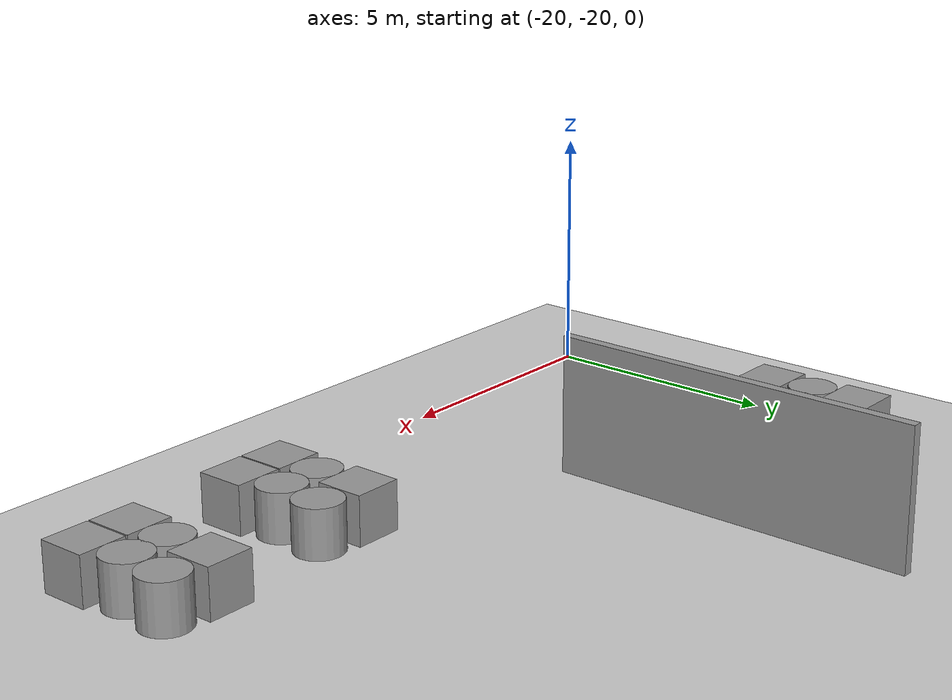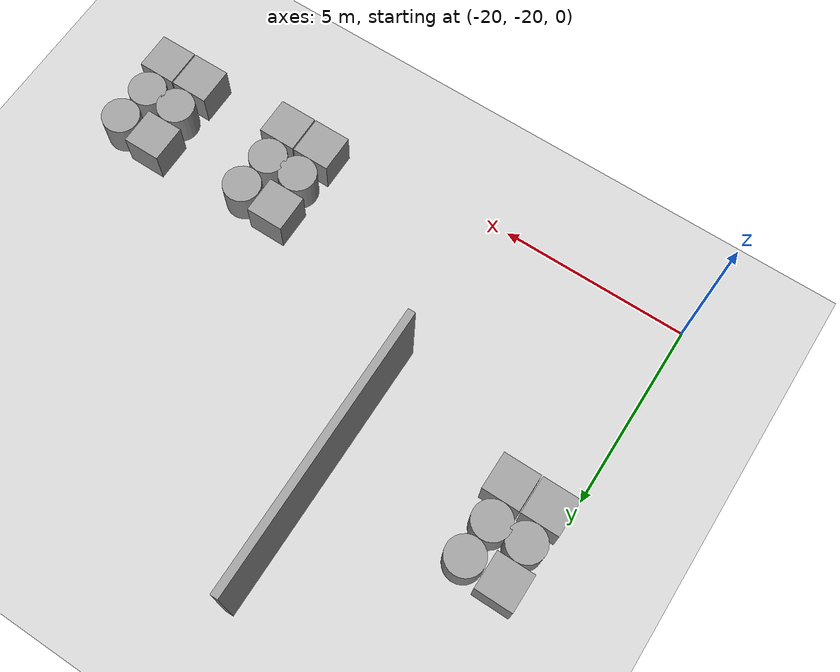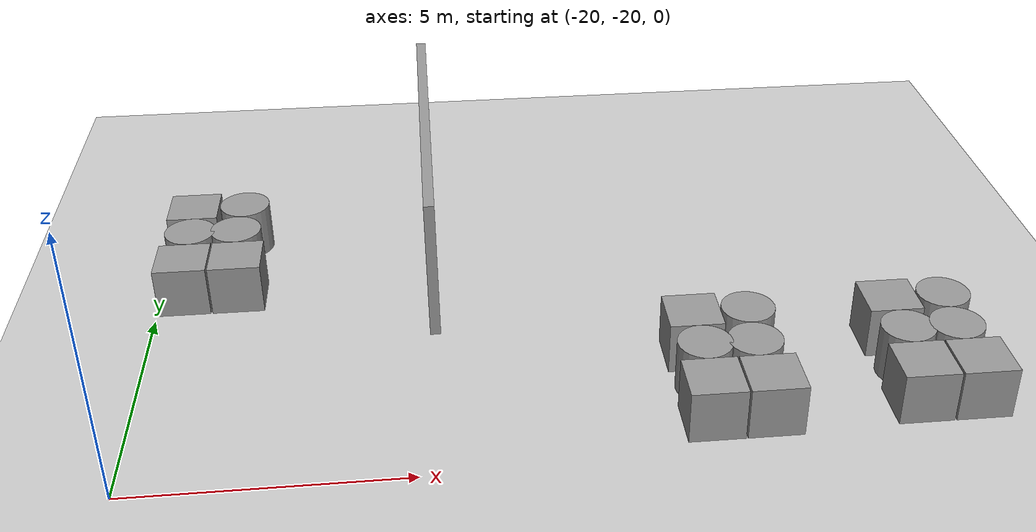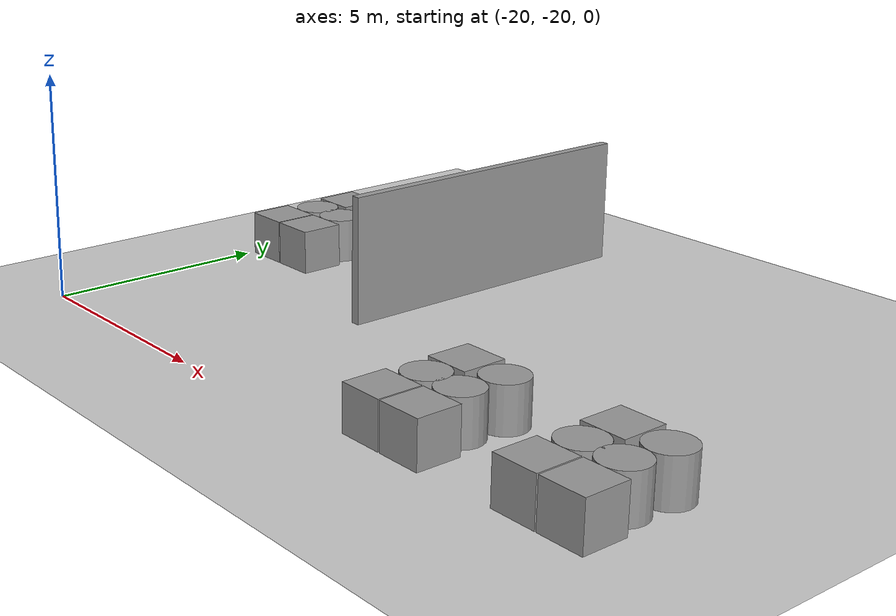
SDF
<sdf version="1.6">
 <world name="default">
  <model name="ground_plane">
   <static>1</static>
   <link name="link">
    <collision name="collision">
     <geometry><plane><normal>0 0 1</normal><size>100 100</size></plane></geometry>
     <surface><friction><ode><mu>100</mu><mu2>50</mu2></ode></friction></surface>
    </collision>
    <visual name="visual">
     <cast_shadows>0</cast_shadows>
     <geometry><plane><normal>0 0 1</normal><size>100 100</size></plane></geometry>
     <material>
      <script><uri>file://media/materials/scripts/gazebo.material</uri><name>Gazebo/Grey</name></script>
     </material>
    </visual>
   </link>
  </model>
  <model name="grey_wall_5_clone_0">
   <static>1</static>
   <link name="link">
    <pose>0 0 1.4 0 -0 0</pose>
    <collision name="collision"><geometry><box><size>7.5 0.2 2.8</size></box></geometry></collision>
    <visual name="visual">
     <cast_shadows>0</cast_shadows>
     <geometry><box><size>7.5 0.2 2.8</size></box></geometry>
     <material>
      <script>
       <uri>model://grey_wall/materials/scripts</uri>
       <uri>model://grey_wall/materials/textures</uri>
       <name>vrc/grey_wall</name>
      </script>
     </material>
    </visual>
   </link>
   <pose>-14.6343 -12.2013 0 0 -0 1.5708</pose>
  </model>
  <model name="machine3_0">
   <link name="link_13">
    <pose>-0.503159 1 0 0 -0 0</pose>
    <inertial>
     <mass>1</mass>
     <inertia>
      <ixx>0.166667</ixx>
      <ixy>0</ixy>
      <ixz>0</ixz>
      <iyy>0.166667</iyy>
      <iyz>0</iyz>
      <izz>0.166667</izz>
     </inertia>
    </inertial>
    <visual name="visual">
     <geometry><box><size>1 1 1</size></box></geometry>
     <material>
      <lighting>1</lighting>
      <script><uri>file://media/materials/scripts/gazebo.material</uri><name>Gazebo/Grey</name></script>
      <ambient>0.3 0.3 0.3 1</ambient>
      <diffuse>0.7 0.7 0.7 1</diffuse>
      <specular>0.01 0.01 0.01 1</specular>
      <emissive>0 0 0 1</emissive>
     </material>
    </visual>
    <collision name="collision">
     <geometry><box><size>1 1 1</size></box></geometry>
     <surface>
      <friction>
       <ode><mu>1</mu><mu2>1</mu2><fdir1>0 0 0</fdir1><slip1>0</slip1><slip2>0</slip2></ode>
       <torsional>
        <coefficient>1</coefficient>
        <patch_radius>0</patch_radius>
        <surface_radius>0</surface_radius>
        <use_patch_radius>1</use_patch_radius>
        <ode><slip>0</slip></ode>
       </torsional>
      </friction>
      <bounce><restitution_coefficient>0</restitution_coefficient><threshold>1e+06</threshold></bounce>
      <contact>
       <collide_without_contact>0</collide_without_contact>
       <collide_without_contact_bitmask>1</collide_without_contact_bitmask>
       <collide_bitmask>1</collide_bitmask>
       <ode>
        <soft_cfm>0</soft_cfm>
        <soft_erp>0.2</soft_erp>
        <kp>1e+13</kp>
        <kd>1</kd>
        <max_vel>0.01</max_vel>
        <min_depth>0</min_depth>
       </ode>
       <bullet>
        <split_impulse>1</split_impulse>
        <split_impulse_penetration_threshold>-0.01</split_impulse_penetration_threshold>
        <soft_cfm>0</soft_cfm>
        <soft_erp>0.2</soft_erp>
        <kp>1e+13</kp>
        <kd>1</kd>
       </bullet>
      </contact>
     </surface>
    </collision>
   </link>
   <link name="link_14">
    <pose>0.524915 1 0 0 -0 0</pose>
    <inertial>
     <mass>1</mass>
     <inertia><ixx>0.145833</ixx><ixy>0</ixy><ixz>0</ixz><iyy>0.145833</iyy><iyz>0</iyz><izz>0.125</izz></inertia>
    </inertial>
    <visual name="visual">
     <geometry><cylinder><radius>0.5</radius><length>1</length></cylinder></geometry>
     <material>
      <lighting>1</lighting>
      <script><uri>file://media/materials/scripts/gazebo.material</uri><name>Gazebo/Grey</name></script>
      <ambient>0.3 0.3 0.3 1</ambient>
      <diffuse>0.7 0.7 0.7 1</diffuse>
      <specular>0.01 0.01 0.01 1</specular>
      <emissive>0 0 0 1</emissive>
     </material>
    </visual>
    <collision name="collision">
     <geometry><cylinder><radius>0.5</radius><length>1</length></cylinder></geometry>
     <surface>
      <friction>
       <ode><mu>1</mu><mu2>1</mu2><fdir1>0 0 0</fdir1><slip1>0</slip1><slip2>0</slip2></ode>
       <torsional>
        <coefficient>1</coefficient>
        <patch_radius>0</patch_radius>
        <surface_radius>0</surface_radius>
        <use_patch_radius>1</use_patch_radius>
        <ode><slip>0</slip></ode>
       </torsional>
      </friction>
      <bounce><restitution_coefficient>0</restitution_coefficient><threshold>1e+06</threshold></bounce>
      <contact>
       <collide_without_contact>0</collide_without_contact>
       <collide_without_contact_bitmask>1</collide_without_contact_bitmask>
       <collide_bitmask>1</collide_bitmask>
       <ode>
        <soft_cfm>0</soft_cfm>
        <soft_erp>0.2</soft_erp>
        <kp>1e+13</kp>
        <kd>1</kd>
        <max_vel>0.01</max_vel>
        <min_depth>0</min_depth>
       </ode>
       <bullet>
        <split_impulse>1</split_impulse>
        <split_impulse_penetration_threshold>-0.01</split_impulse_penetration_threshold>
        <soft_cfm>0</soft_cfm>
        <soft_erp>0.2</soft_erp>
        <kp>1e+13</kp>
        <kd>1</kd>
       </bullet>
      </contact>
     </surface>
    </collision>
   </link>
   <link name="link_15">
    <pose>0.434688 0 0 0 -0 0</pose>
    <inertial>
     <mass>1</mass>
     <inertia><ixx>0.145833</ixx><ixy>0</ixy><ixz>0</ixz><iyy>0.145833</iyy><iyz>0</iyz><izz>0.125</izz></inertia>
    </inertial>
    <visual name="visual">
     <geometry><cylinder><radius>0.5</radius><length>1</length></cylinder></geometry>
     <material>
      <lighting>1</lighting>
      <script><uri>file://media/materials/scripts/gazebo.material</uri><name>Gazebo/Grey</name></script>
      <ambient>0.3 0.3 0.3 1</ambient>
      <diffuse>0.7 0.7 0.7 1</diffuse>
      <specular>0.01 0.01 0.01 1</specular>
      <emissive>0 0 0 1</emissive>
     </material>
    </visual>
    <collision name="collision">
     <geometry><cylinder><radius>0.5</radius><length>1</length></cylinder></geometry>
     <surface>
      <friction>
       <ode><mu>1</mu><mu2>1</mu2><fdir1>0 0 0</fdir1><slip1>0</slip1><slip2>0</slip2></ode>
       <torsional>
        <coefficient>1</coefficient>
        <patch_radius>0</patch_radius>
        <surface_radius>0</surface_radius>
        <use_patch_radius>1</use_patch_radius>
        <ode><slip>0</slip></ode>
       </torsional>
      </friction>
      <bounce><restitution_coefficient>0</restitution_coefficient><threshold>1e+06</threshold></bounce>
      <contact>
       <collide_without_contact>0</collide_without_contact>
       <collide_without_contact_bitmask>1</collide_without_contact_bitmask>
       <collide_bitmask>1</collide_bitmask>
       <ode>
        <soft_cfm>0</soft_cfm>
        <soft_erp>0.2</soft_erp>
        <kp>1e+13</kp>
        <kd>1</kd>
        <max_vel>0.01</max_vel>
        <min_depth>0</min_depth>
       </ode>
       <bullet>
        <split_impulse>1</split_impulse>
        <split_impulse_penetration_threshold>-0.01</split_impulse_penetration_threshold>
        <soft_cfm>0</soft_cfm>
        <soft_erp>0.2</soft_erp>
        <kp>1e+13</kp>
        <kd>1</kd>
       </bullet>
      </contact>
     </surface>
    </collision>
   </link>
   <link name="link_16">
    <pose>-0.471074 0 0 0 -0 0</pose>
    <inertial>
     <mass>1</mass>
     <inertia><ixx>0.145833</ixx><ixy>0</ixy><ixz>0</ixz><iyy>0.145833</iyy><iyz>0</iyz><izz>0.125</izz></inertia>
    </inertial>
    <visual name="visual">
     <geometry><cylinder><radius>0.5</radius><length>1</length></cylinder></geometry>
     <material>
      <lighting>1</lighting>
      <script><uri>file://media/materials/scripts/gazebo.material</uri><name>Gazebo/Grey</name></script>
      <ambient>0.3 0.3 0.3 1</ambient>
      <diffuse>0.7 0.7 0.7 1</diffuse>
      <specular>0.01 0.01 0.01 1</specular>
      <emissive>0 0 0 1</emissive>
     </material>
    </visual>
    <collision name="collision">
     <geometry><cylinder><radius>0.5</radius><length>1</length></cylinder></geometry>
     <surface>
      <friction>
       <ode><mu>1</mu><mu2>1</mu2><fdir1>0 0 0</fdir1><slip1>0</slip1><slip2>0</slip2></ode>
       <torsional>
        <coefficient>1</coefficient>
        <patch_radius>0</patch_radius>
        <surface_radius>0</surface_radius>
        <use_patch_radius>1</use_patch_radius>
        <ode><slip>0</slip></ode>
       </torsional>
      </friction>
      <bounce><restitution_coefficient>0</restitution_coefficient><threshold>1e+06</threshold></bounce>
      <contact>
       <collide_without_contact>0</collide_without_contact>
       <collide_without_contact_bitmask>1</collide_without_contact_bitmask>
       <collide_bitmask>1</collide_bitmask>
       <ode>
        <soft_cfm>0</soft_cfm>
        <soft_erp>0.2</soft_erp>
        <kp>1e+13</kp>
        <kd>1</kd>
        <max_vel>0.01</max_vel>
        <min_depth>0</min_depth>
       </ode>
       <bullet>
        <split_impulse>1</split_impulse>
        <split_impulse_penetration_threshold>-0.01</split_impulse_penetration_threshold>
        <soft_cfm>0</soft_cfm>
        <soft_erp>0.2</soft_erp>
        <kp>1e+13</kp>
        <kd>1</kd>
       </bullet>
      </contact>
     </surface>
    </collision>
   </link>
   <link name="link_17">
    <pose>-0.50937 -1 0 0 -0 0</pose>
    <inertial>
     <mass>1</mass>
     <inertia>
      <ixx>0.166667</ixx>
      <ixy>0</ixy>
      <ixz>0</ixz>
      <iyy>0.166667</iyy>
      <iyz>0</iyz>
      <izz>0.166667</izz>
     </inertia>
    </inertial>
    <visual name="visual">
     <geometry><box><size>1 1 1</size></box></geometry>
     <material>
      <lighting>1</lighting>
      <script><uri>file://media/materials/scripts/gazebo.material</uri><name>Gazebo/Grey</name></script>
      <ambient>0.3 0.3 0.3 1</ambient>
      <diffuse>0.7 0.7 0.7 1</diffuse>
      <specular>0.01 0.01 0.01 1</specular>
      <emissive>0 0 0 1</emissive>
     </material>
    </visual>
    <collision name="collision">
     <geometry><box><size>1 1 1</size></box></geometry>
     <surface>
      <friction>
       <ode><mu>1</mu><mu2>1</mu2><fdir1>0 0 0</fdir1><slip1>0</slip1><slip2>0</slip2></ode>
       <torsional>
        <coefficient>1</coefficient>
        <patch_radius>0</patch_radius>
        <surface_radius>0</surface_radius>
        <use_patch_radius>1</use_patch_radius>
        <ode><slip>0</slip></ode>
       </torsional>
      </friction>
      <bounce><restitution_coefficient>0</restitution_coefficient><threshold>1e+06</threshold></bounce>
      <contact>
       <collide_without_contact>0</collide_without_contact>
       <collide_without_contact_bitmask>1</collide_without_contact_bitmask>
       <collide_bitmask>1</collide_bitmask>
       <ode>
        <soft_cfm>0</soft_cfm>
        <soft_erp>0.2</soft_erp>
        <kp>1e+13</kp>
        <kd>1</kd>
        <max_vel>0.01</max_vel>
        <min_depth>0</min_depth>
       </ode>
       <bullet>
        <split_impulse>1</split_impulse>
        <split_impulse_penetration_threshold>-0.01</split_impulse_penetration_threshold>
        <soft_cfm>0</soft_cfm>
        <soft_erp>0.2</soft_erp>
        <kp>1e+13</kp>
        <kd>1</kd>
       </bullet>
      </contact>
     </surface>
    </collision>
   </link>
   <link name="link_18">
    <pose>0.524008 -1 0 0 -0 0</pose>
    <inertial>
     <mass>1</mass>
     <inertia>
      <ixx>0.166667</ixx>
      <ixy>0</ixy>
      <ixz>0</ixz>
      <iyy>0.166667</iyy>
      <iyz>0</iyz>
      <izz>0.166667</izz>
     </inertia>
    </inertial>
    <visual name="visual">
     <geometry><box><size>1 1 1</size></box></geometry>
     <material>
      <lighting>1</lighting>
      <script><uri>file://media/materials/scripts/gazebo.material</uri><name>Gazebo/Grey</name></script>
      <ambient>0.3 0.3 0.3 1</ambient>
      <diffuse>0.7 0.7 0.7 1</diffuse>
      <specular>0.01 0.01 0.01 1</specular>
      <emissive>0 0 0 1</emissive>
     </material>
    </visual>
    <collision name="collision">
     <geometry><box><size>1 1 1</size></box></geometry>
     <surface>
      <friction>
       <ode><mu>1</mu><mu2>1</mu2><fdir1>0 0 0</fdir1><slip1>0</slip1><slip2>0</slip2></ode>
       <torsional>
        <coefficient>1</coefficient>
        <patch_radius>0</patch_radius>
        <surface_radius>0</surface_radius>
        <use_patch_radius>1</use_patch_radius>
        <ode><slip>0</slip></ode>
       </torsional>
      </friction>
      <bounce><restitution_coefficient>0</restitution_coefficient><threshold>1e+06</threshold></bounce>
      <contact>
       <collide_without_contact>0</collide_without_contact>
       <collide_without_contact_bitmask>1</collide_without_contact_bitmask>
       <collide_bitmask>1</collide_bitmask>
       <ode>
        <soft_cfm>0</soft_cfm>
        <soft_erp>0.2</soft_erp>
        <kp>1e+13</kp>
        <kd>1</kd>
        <max_vel>0.01</max_vel>
        <min_depth>0</min_depth>
       </ode>
       <bullet>
        <split_impulse>1</split_impulse>
        <split_impulse_penetration_threshold>-0.01</split_impulse_penetration_threshold>
        <soft_cfm>0</soft_cfm>
        <soft_erp>0.2</soft_erp>
        <kp>1e+13</kp>
        <kd>1</kd>
       </bullet>
      </contact>
     </surface>
    </collision>
   </link>
   <static>0</static>
   <pose>-18.9588 -13.2998 0.5 0 -0 0</pose>
  </model>
  <model name="machine3_clone">
   <link name="link_13">
    <pose>-0.503159 1 0 0 -0 0</pose>
    <inertial>
     <mass>1</mass>
     <inertia>
      <ixx>0.166667</ixx>
      <ixy>0</ixy>
      <ixz>0</ixz>
      <iyy>0.166667</iyy>
      <iyz>0</iyz>
      <izz>0.166667</izz>
     </inertia>
    </inertial>
    <visual name="visual">
     <geometry><box><size>1 1 1</size></box></geometry>
     <material>
      <lighting>1</lighting>
      <script><uri>file://media/materials/scripts/gazebo.material</uri><name>Gazebo/Grey</name></script>
      <ambient>0.3 0.3 0.3 1</ambient>
      <diffuse>0.7 0.7 0.7 1</diffuse>
      <specular>0.01 0.01 0.01 1</specular>
      <emissive>0 0 0 1</emissive>
     </material>
    </visual>
    <collision name="collision">
     <geometry><box><size>1 1 1</size></box></geometry>
     <surface>
      <friction>
       <ode><mu>1</mu><mu2>1</mu2><fdir1>0 0 0</fdir1><slip1>0</slip1><slip2>0</slip2></ode>
       <torsional>
        <coefficient>1</coefficient>
        <patch_radius>0</patch_radius>
        <surface_radius>0</surface_radius>
        <use_patch_radius>1</use_patch_radius>
        <ode><slip>0</slip></ode>
       </torsional>
      </friction>
      <bounce><restitution_coefficient>0</restitution_coefficient><threshold>1e+06</threshold></bounce>
      <contact>
       <collide_without_contact>0</collide_without_contact>
       <collide_without_contact_bitmask>1</collide_without_contact_bitmask>
       <collide_bitmask>1</collide_bitmask>
       <ode>
        <soft_cfm>0</soft_cfm>
        <soft_erp>0.2</soft_erp>
        <kp>1e+13</kp>
        <kd>1</kd>
        <max_vel>0.01</max_vel>
        <min_depth>0</min_depth>
       </ode>
       <bullet>
        <split_impulse>1</split_impulse>
        <split_impulse_penetration_threshold>-0.01</split_impulse_penetration_threshold>
        <soft_cfm>0</soft_cfm>
        <soft_erp>0.2</soft_erp>
        <kp>1e+13</kp>
        <kd>1</kd>
       </bullet>
      </contact>
     </surface>
    </collision>
   </link>
   <link name="link_14">
    <pose>0.524915 1 0 0 -0 0</pose>
    <inertial>
     <mass>1</mass>
     <inertia><ixx>0.145833</ixx><ixy>0</ixy><ixz>0</ixz><iyy>0.145833</iyy><iyz>0</iyz><izz>0.125</izz></inertia>
    </inertial>
    <visual name="visual">
     <geometry><cylinder><radius>0.5</radius><length>1</length></cylinder></geometry>
     <material>
      <lighting>1</lighting>
      <script><uri>file://media/materials/scripts/gazebo.material</uri><name>Gazebo/Grey</name></script>
      <ambient>0.3 0.3 0.3 1</ambient>
      <diffuse>0.7 0.7 0.7 1</diffuse>
      <specular>0.01 0.01 0.01 1</specular>
      <emissive>0 0 0 1</emissive>
     </material>
    </visual>
    <collision name="collision">
     <geometry><cylinder><radius>0.5</radius><length>1</length></cylinder></geometry>
     <surface>
      <friction>
       <ode><mu>1</mu><mu2>1</mu2><fdir1>0 0 0</fdir1><slip1>0</slip1><slip2>0</slip2></ode>
       <torsional>
        <coefficient>1</coefficient>
        <patch_radius>0</patch_radius>
        <surface_radius>0</surface_radius>
        <use_patch_radius>1</use_patch_radius>
        <ode><slip>0</slip></ode>
       </torsional>
      </friction>
      <bounce><restitution_coefficient>0</restitution_coefficient><threshold>1e+06</threshold></bounce>
      <contact>
       <collide_without_contact>0</collide_without_contact>
       <collide_without_contact_bitmask>1</collide_without_contact_bitmask>
       <collide_bitmask>1</collide_bitmask>
       <ode>
        <soft_cfm>0</soft_cfm>
        <soft_erp>0.2</soft_erp>
        <kp>1e+13</kp>
        <kd>1</kd>
        <max_vel>0.01</max_vel>
        <min_depth>0</min_depth>
       </ode>
       <bullet>
        <split_impulse>1</split_impulse>
        <split_impulse_penetration_threshold>-0.01</split_impulse_penetration_threshold>
        <soft_cfm>0</soft_cfm>
        <soft_erp>0.2</soft_erp>
        <kp>1e+13</kp>
        <kd>1</kd>
       </bullet>
      </contact>
     </surface>
    </collision>
   </link>
   <link name="link_15">
    <pose>0.434688 0 0 0 -0 0</pose>
    <inertial>
     <mass>1</mass>
     <inertia><ixx>0.145833</ixx><ixy>0</ixy><ixz>0</ixz><iyy>0.145833</iyy><iyz>0</iyz><izz>0.125</izz></inertia>
    </inertial>
    <visual name="visual">
     <geometry><cylinder><radius>0.5</radius><length>1</length></cylinder></geometry>
     <material>
      <lighting>1</lighting>
      <script><uri>file://media/materials/scripts/gazebo.material</uri><name>Gazebo/Grey</name></script>
      <ambient>0.3 0.3 0.3 1</ambient>
      <diffuse>0.7 0.7 0.7 1</diffuse>
      <specular>0.01 0.01 0.01 1</specular>
      <emissive>0 0 0 1</emissive>
     </material>
    </visual>
    <collision name="collision">
     <geometry><cylinder><radius>0.5</radius><length>1</length></cylinder></geometry>
     <surface>
      <friction>
       <ode><mu>1</mu><mu2>1</mu2><fdir1>0 0 0</fdir1><slip1>0</slip1><slip2>0</slip2></ode>
       <torsional>
        <coefficient>1</coefficient>
        <patch_radius>0</patch_radius>
        <surface_radius>0</surface_radius>
        <use_patch_radius>1</use_patch_radius>
        <ode><slip>0</slip></ode>
       </torsional>
      </friction>
      <bounce><restitution_coefficient>0</restitution_coefficient><threshold>1e+06</threshold></bounce>
      <contact>
       <collide_without_contact>0</collide_without_contact>
       <collide_without_contact_bitmask>1</collide_without_contact_bitmask>
       <collide_bitmask>1</collide_bitmask>
       <ode>
        <soft_cfm>0</soft_cfm>
        <soft_erp>0.2</soft_erp>
        <kp>1e+13</kp>
        <kd>1</kd>
        <max_vel>0.01</max_vel>
        <min_depth>0</min_depth>
       </ode>
       <bullet>
        <split_impulse>1</split_impulse>
        <split_impulse_penetration_threshold>-0.01</split_impulse_penetration_threshold>
        <soft_cfm>0</soft_cfm>
        <soft_erp>0.2</soft_erp>
        <kp>1e+13</kp>
        <kd>1</kd>
       </bullet>
      </contact>
     </surface>
    </collision>
   </link>
   <link name="link_16">
    <pose>-0.471074 0 0 0 -0 0</pose>
    <inertial>
     <mass>1</mass>
     <inertia><ixx>0.145833</ixx><ixy>0</ixy><ixz>0</ixz><iyy>0.145833</iyy><iyz>0</iyz><izz>0.125</izz></inertia>
    </inertial>
    <visual name="visual">
     <geometry><cylinder><radius>0.5</radius><length>1</length></cylinder></geometry>
     <material>
      <lighting>1</lighting>
      <script><uri>file://media/materials/scripts/gazebo.material</uri><name>Gazebo/Grey</name></script>
      <ambient>0.3 0.3 0.3 1</ambient>
      <diffuse>0.7 0.7 0.7 1</diffuse>
      <specular>0.01 0.01 0.01 1</specular>
      <emissive>0 0 0 1</emissive>
     </material>
    </visual>
    <collision name="collision">
     <geometry><cylinder><radius>0.5</radius><length>1</length></cylinder></geometry>
     <surface>
      <friction>
       <ode><mu>1</mu><mu2>1</mu2><fdir1>0 0 0</fdir1><slip1>0</slip1><slip2>0</slip2></ode>
       <torsional>
        <coefficient>1</coefficient>
        <patch_radius>0</patch_radius>
        <surface_radius>0</surface_radius>
        <use_patch_radius>1</use_patch_radius>
        <ode><slip>0</slip></ode>
       </torsional>
      </friction>
      <bounce><restitution_coefficient>0</restitution_coefficient><threshold>1e+06</threshold></bounce>
      <contact>
       <collide_without_contact>0</collide_without_contact>
       <collide_without_contact_bitmask>1</collide_without_contact_bitmask>
       <collide_bitmask>1</collide_bitmask>
       <ode>
        <soft_cfm>0</soft_cfm>
        <soft_erp>0.2</soft_erp>
        <kp>1e+13</kp>
        <kd>1</kd>
        <max_vel>0.01</max_vel>
        <min_depth>0</min_depth>
       </ode>
       <bullet>
        <split_impulse>1</split_impulse>
        <split_impulse_penetration_threshold>-0.01</split_impulse_penetration_threshold>
        <soft_cfm>0</soft_cfm>
        <soft_erp>0.2</soft_erp>
        <kp>1e+13</kp>
        <kd>1</kd>
       </bullet>
      </contact>
     </surface>
    </collision>
   </link>
   <link name="link_17">
    <pose>-0.50937 -1 0 0 -0 0</pose>
    <inertial>
     <mass>1</mass>
     <inertia>
      <ixx>0.166667</ixx>
      <ixy>0</ixy>
      <ixz>0</ixz>
      <iyy>0.166667</iyy>
      <iyz>0</iyz>
      <izz>0.166667</izz>
     </inertia>
    </inertial>
    <visual name="visual">
     <geometry><box><size>1 1 1</size></box></geometry>
     <material>
      <lighting>1</lighting>
      <script><uri>file://media/materials/scripts/gazebo.material</uri><name>Gazebo/Grey</name></script>
      <ambient>0.3 0.3 0.3 1</ambient>
      <diffuse>0.7 0.7 0.7 1</diffuse>
      <specular>0.01 0.01 0.01 1</specular>
      <emissive>0 0 0 1</emissive>
     </material>
    </visual>
    <collision name="collision">
     <geometry><box><size>1 1 1</size></box></geometry>
     <surface>
      <friction>
       <ode><mu>1</mu><mu2>1</mu2><fdir1>0 0 0</fdir1><slip1>0</slip1><slip2>0</slip2></ode>
       <torsional>
        <coefficient>1</coefficient>
        <patch_radius>0</patch_radius>
        <surface_radius>0</surface_radius>
        <use_patch_radius>1</use_patch_radius>
        <ode><slip>0</slip></ode>
       </torsional>
      </friction>
      <bounce><restitution_coefficient>0</restitution_coefficient><threshold>1e+06</threshold></bounce>
      <contact>
       <collide_without_contact>0</collide_without_contact>
       <collide_without_contact_bitmask>1</collide_without_contact_bitmask>
       <collide_bitmask>1</collide_bitmask>
       <ode>
        <soft_cfm>0</soft_cfm>
        <soft_erp>0.2</soft_erp>
        <kp>1e+13</kp>
        <kd>1</kd>
        <max_vel>0.01</max_vel>
        <min_depth>0</min_depth>
       </ode>
       <bullet>
        <split_impulse>1</split_impulse>
        <split_impulse_penetration_threshold>-0.01</split_impulse_penetration_threshold>
        <soft_cfm>0</soft_cfm>
        <soft_erp>0.2</soft_erp>
        <kp>1e+13</kp>
        <kd>1</kd>
       </bullet>
      </contact>
     </surface>
    </collision>
   </link>
   <link name="link_18">
    <pose>0.524008 -1 0 0 -0 0</pose>
    <inertial>
     <mass>1</mass>
     <inertia>
      <ixx>0.166667</ixx>
      <ixy>0</ixy>
      <ixz>0</ixz>
      <iyy>0.166667</iyy>
      <iyz>0</iyz>
      <izz>0.166667</izz>
     </inertia>
    </inertial>
    <visual name="visual">
     <geometry><box><size>1 1 1</size></box></geometry>
     <material>
      <lighting>1</lighting>
      <script><uri>file://media/materials/scripts/gazebo.material</uri><name>Gazebo/Grey</name></script>
      <ambient>0.3 0.3 0.3 1</ambient>
      <diffuse>0.7 0.7 0.7 1</diffuse>
      <specular>0.01 0.01 0.01 1</specular>
      <emissive>0 0 0 1</emissive>
     </material>
    </visual>
    <collision name="collision">
     <geometry><box><size>1 1 1</size></box></geometry>
     <surface>
      <friction>
       <ode><mu>1</mu><mu2>1</mu2><fdir1>0 0 0</fdir1><slip1>0</slip1><slip2>0</slip2></ode>
       <torsional>
        <coefficient>1</coefficient>
        <patch_radius>0</patch_radius>
        <surface_radius>0</surface_radius>
        <use_patch_radius>1</use_patch_radius>
        <ode><slip>0</slip></ode>
       </torsional>
      </friction>
      <bounce><restitution_coefficient>0</restitution_coefficient><threshold>1e+06</threshold></bounce>
      <contact>
       <collide_without_contact>0</collide_without_contact>
       <collide_without_contact_bitmask>1</collide_without_contact_bitmask>
       <collide_bitmask>1</collide_bitmask>
       <ode>
        <soft_cfm>0</soft_cfm>
        <soft_erp>0.2</soft_erp>
        <kp>1e+13</kp>
        <kd>1</kd>
        <max_vel>0.01</max_vel>
        <min_depth>0</min_depth>
       </ode>
       <bullet>
        <split_impulse>1</split_impulse>
        <split_impulse_penetration_threshold>-0.01</split_impulse_penetration_threshold>
        <soft_cfm>0</soft_cfm>
        <soft_erp>0.2</soft_erp>
        <kp>1e+13</kp>
        <kd>1</kd>
       </bullet>
      </contact>
     </surface>
    </collision>
   </link>
   <static>0</static>
   <pose>-5.69915 -17.979 0.5 0 -0 0</pose>
  </model>
  <model name="machine3_clone_0">
   <link name="link_13">
    <pose>-0.503159 1 0 0 -0 0</pose>
    <inertial>
     <mass>1</mass>
     <inertia>
      <ixx>0.166667</ixx>
      <ixy>0</ixy>
      <ixz>0</ixz>
      <iyy>0.166667</iyy>
      <iyz>0</iyz>
      <izz>0.166667</izz>
     </inertia>
    </inertial>
    <visual name="visual">
     <geometry><box><size>1 1 1</size></box></geometry>
     <material>
      <lighting>1</lighting>
      <script><uri>file://media/materials/scripts/gazebo.material</uri><name>Gazebo/Grey</name></script>
      <ambient>0.3 0.3 0.3 1</ambient>
      <diffuse>0.7 0.7 0.7 1</diffuse>
      <specular>0.01 0.01 0.01 1</specular>
      <emissive>0 0 0 1</emissive>
     </material>
    </visual>
    <collision name="collision">
     <geometry><box><size>1 1 1</size></box></geometry>
     <surface>
      <friction>
       <ode><mu>1</mu><mu2>1</mu2><fdir1>0 0 0</fdir1><slip1>0</slip1><slip2>0</slip2></ode>
       <torsional>
        <coefficient>1</coefficient>
        <patch_radius>0</patch_radius>
        <surface_radius>0</surface_radius>
        <use_patch_radius>1</use_patch_radius>
        <ode><slip>0</slip></ode>
       </torsional>
      </friction>
      <bounce><restitution_coefficient>0</restitution_coefficient><threshold>1e+06</threshold></bounce>
      <contact>
       <collide_without_contact>0</collide_without_contact>
       <collide_without_contact_bitmask>1</collide_without_contact_bitmask>
       <collide_bitmask>1</collide_bitmask>
       <ode>
        <soft_cfm>0</soft_cfm>
        <soft_erp>0.2</soft_erp>
        <kp>1e+13</kp>
        <kd>1</kd>
        <max_vel>0.01</max_vel>
        <min_depth>0</min_depth>
       </ode>
       <bullet>
        <split_impulse>1</split_impulse>
        <split_impulse_penetration_threshold>-0.01</split_impulse_penetration_threshold>
        <soft_cfm>0</soft_cfm>
        <soft_erp>0.2</soft_erp>
        <kp>1e+13</kp>
        <kd>1</kd>
       </bullet>
      </contact>
     </surface>
    </collision>
   </link>
   <link name="link_14">
    <pose>0.524915 1 0 0 -0 0</pose>
    <inertial>
     <mass>1</mass>
     <inertia><ixx>0.145833</ixx><ixy>0</ixy><ixz>0</ixz><iyy>0.145833</iyy><iyz>0</iyz><izz>0.125</izz></inertia>
    </inertial>
    <visual name="visual">
     <geometry><cylinder><radius>0.5</radius><length>1</length></cylinder></geometry>
     <material>
      <lighting>1</lighting>
      <script><uri>file://media/materials/scripts/gazebo.material</uri><name>Gazebo/Grey</name></script>
      <ambient>0.3 0.3 0.3 1</ambient>
      <diffuse>0.7 0.7 0.7 1</diffuse>
      <specular>0.01 0.01 0.01 1</specular>
      <emissive>0 0 0 1</emissive>
     </material>
    </visual>
    <collision name="collision">
     <geometry><cylinder><radius>0.5</radius><length>1</length></cylinder></geometry>
     <surface>
      <friction>
       <ode><mu>1</mu><mu2>1</mu2><fdir1>0 0 0</fdir1><slip1>0</slip1><slip2>0</slip2></ode>
       <torsional>
        <coefficient>1</coefficient>
        <patch_radius>0</patch_radius>
        <surface_radius>0</surface_radius>
        <use_patch_radius>1</use_patch_radius>
        <ode><slip>0</slip></ode>
       </torsional>
      </friction>
      <bounce><restitution_coefficient>0</restitution_coefficient><threshold>1e+06</threshold></bounce>
      <contact>
       <collide_without_contact>0</collide_without_contact>
       <collide_without_contact_bitmask>1</collide_without_contact_bitmask>
       <collide_bitmask>1</collide_bitmask>
       <ode>
        <soft_cfm>0</soft_cfm>
        <soft_erp>0.2</soft_erp>
        <kp>1e+13</kp>
        <kd>1</kd>
        <max_vel>0.01</max_vel>
        <min_depth>0</min_depth>
       </ode>
       <bullet>
        <split_impulse>1</split_impulse>
        <split_impulse_penetration_threshold>-0.01</split_impulse_penetration_threshold>
        <soft_cfm>0</soft_cfm>
        <soft_erp>0.2</soft_erp>
        <kp>1e+13</kp>
        <kd>1</kd>
       </bullet>
      </contact>
     </surface>
    </collision>
   </link>
   <link name="link_15">
    <pose>0.434688 0 0 0 -0 0</pose>
    <inertial>
     <mass>1</mass>
     <inertia><ixx>0.145833</ixx><ixy>0</ixy><ixz>0</ixz><iyy>0.145833</iyy><iyz>0</iyz><izz>0.125</izz></inertia>
    </inertial>
    <visual name="visual">
     <geometry><cylinder><radius>0.5</radius><length>1</length></cylinder></geometry>
     <material>
      <lighting>1</lighting>
      <script><uri>file://media/materials/scripts/gazebo.material</uri><name>Gazebo/Grey</name></script>
      <ambient>0.3 0.3 0.3 1</ambient>
      <diffuse>0.7 0.7 0.7 1</diffuse>
      <specular>0.01 0.01 0.01 1</specular>
      <emissive>0 0 0 1</emissive>
     </material>
    </visual>
    <collision name="collision">
     <geometry><cylinder><radius>0.5</radius><length>1</length></cylinder></geometry>
     <surface>
      <friction>
       <ode><mu>1</mu><mu2>1</mu2><fdir1>0 0 0</fdir1><slip1>0</slip1><slip2>0</slip2></ode>
       <torsional>
        <coefficient>1</coefficient>
        <patch_radius>0</patch_radius>
        <surface_radius>0</surface_radius>
        <use_patch_radius>1</use_patch_radius>
        <ode><slip>0</slip></ode>
       </torsional>
      </friction>
      <bounce><restitution_coefficient>0</restitution_coefficient><threshold>1e+06</threshold></bounce>
      <contact>
       <collide_without_contact>0</collide_without_contact>
       <collide_without_contact_bitmask>1</collide_without_contact_bitmask>
       <collide_bitmask>1</collide_bitmask>
       <ode>
        <soft_cfm>0</soft_cfm>
        <soft_erp>0.2</soft_erp>
        <kp>1e+13</kp>
        <kd>1</kd>
        <max_vel>0.01</max_vel>
        <min_depth>0</min_depth>
       </ode>
       <bullet>
        <split_impulse>1</split_impulse>
        <split_impulse_penetration_threshold>-0.01</split_impulse_penetration_threshold>
        <soft_cfm>0</soft_cfm>
        <soft_erp>0.2</soft_erp>
        <kp>1e+13</kp>
        <kd>1</kd>
       </bullet>
      </contact>
     </surface>
    </collision>
   </link>
   <link name="link_16">
    <pose>-0.471074 0 0 0 -0 0</pose>
    <inertial>
     <mass>1</mass>
     <inertia><ixx>0.145833</ixx><ixy>0</ixy><ixz>0</ixz><iyy>0.145833</iyy><iyz>0</iyz><izz>0.125</izz></inertia>
    </inertial>
    <visual name="visual">
     <geometry><cylinder><radius>0.5</radius><length>1</length></cylinder></geometry>
     <material>
      <lighting>1</lighting>
      <script><uri>file://media/materials/scripts/gazebo.material</uri><name>Gazebo/Grey</name></script>
      <ambient>0.3 0.3 0.3 1</ambient>
      <diffuse>0.7 0.7 0.7 1</diffuse>
      <specular>0.01 0.01 0.01 1</specular>
      <emissive>0 0 0 1</emissive>
     </material>
    </visual>
    <collision name="collision">
     <geometry><cylinder><radius>0.5</radius><length>1</length></cylinder></geometry>
     <surface>
      <friction>
       <ode><mu>1</mu><mu2>1</mu2><fdir1>0 0 0</fdir1><slip1>0</slip1><slip2>0</slip2></ode>
       <torsional>
        <coefficient>1</coefficient>
        <patch_radius>0</patch_radius>
        <surface_radius>0</surface_radius>
        <use_patch_radius>1</use_patch_radius>
        <ode><slip>0</slip></ode>
       </torsional>
      </friction>
      <bounce><restitution_coefficient>0</restitution_coefficient><threshold>1e+06</threshold></bounce>
      <contact>
       <collide_without_contact>0</collide_without_contact>
       <collide_without_contact_bitmask>1</collide_without_contact_bitmask>
       <collide_bitmask>1</collide_bitmask>
       <ode>
        <soft_cfm>0</soft_cfm>
        <soft_erp>0.2</soft_erp>
        <kp>1e+13</kp>
        <kd>1</kd>
        <max_vel>0.01</max_vel>
        <min_depth>0</min_depth>
       </ode>
       <bullet>
        <split_impulse>1</split_impulse>
        <split_impulse_penetration_threshold>-0.01</split_impulse_penetration_threshold>
        <soft_cfm>0</soft_cfm>
        <soft_erp>0.2</soft_erp>
        <kp>1e+13</kp>
        <kd>1</kd>
       </bullet>
      </contact>
     </surface>
    </collision>
   </link>
   <link name="link_17">
    <pose>-0.50937 -1 0 0 -0 0</pose>
    <inertial>
     <mass>1</mass>
     <inertia>
      <ixx>0.166667</ixx>
      <ixy>0</ixy>
      <ixz>0</ixz>
      <iyy>0.166667</iyy>
      <iyz>0</iyz>
      <izz>0.166667</izz>
     </inertia>
    </inertial>
    <visual name="visual">
     <geometry><box><size>1 1 1</size></box></geometry>
     <material>
      <lighting>1</lighting>
      <script><uri>file://media/materials/scripts/gazebo.material</uri><name>Gazebo/Grey</name></script>
      <ambient>0.3 0.3 0.3 1</ambient>
      <diffuse>0.7 0.7 0.7 1</diffuse>
      <specular>0.01 0.01 0.01 1</specular>
      <emissive>0 0 0 1</emissive>
     </material>
    </visual>
    <collision name="collision">
     <geometry><box><size>1 1 1</size></box></geometry>
     <surface>
      <friction>
       <ode><mu>1</mu><mu2>1</mu2><fdir1>0 0 0</fdir1><slip1>0</slip1><slip2>0</slip2></ode>
       <torsional>
        <coefficient>1</coefficient>
        <patch_radius>0</patch_radius>
        <surface_radius>0</surface_radius>
        <use_patch_radius>1</use_patch_radius>
        <ode><slip>0</slip></ode>
       </torsional>
      </friction>
      <bounce><restitution_coefficient>0</restitution_coefficient><threshold>1e+06</threshold></bounce>
      <contact>
       <collide_without_contact>0</collide_without_contact>
       <collide_without_contact_bitmask>1</collide_without_contact_bitmask>
       <collide_bitmask>1</collide_bitmask>
       <ode>
        <soft_cfm>0</soft_cfm>
        <soft_erp>0.2</soft_erp>
        <kp>1e+13</kp>
        <kd>1</kd>
        <max_vel>0.01</max_vel>
        <min_depth>0</min_depth>
       </ode>
       <bullet>
        <split_impulse>1</split_impulse>
        <split_impulse_penetration_threshold>-0.01</split_impulse_penetration_threshold>
        <soft_cfm>0</soft_cfm>
        <soft_erp>0.2</soft_erp>
        <kp>1e+13</kp>
        <kd>1</kd>
       </bullet>
      </contact>
     </surface>
    </collision>
   </link>
   <link name="link_18">
    <pose>0.524008 -1 0 0 -0 0</pose>
    <inertial>
     <mass>1</mass>
     <inertia>
      <ixx>0.166667</ixx>
      <ixy>0</ixy>
      <ixz>0</ixz>
      <iyy>0.166667</iyy>
      <iyz>0</iyz>
      <izz>0.166667</izz>
     </inertia>
    </inertial>
    <visual name="visual">
     <geometry><box><size>1 1 1</size></box></geometry>
     <material>
      <lighting>1</lighting>
      <script><uri>file://media/materials/scripts/gazebo.material</uri><name>Gazebo/Grey</name></script>
      <ambient>0.3 0.3 0.3 1</ambient>
      <diffuse>0.7 0.7 0.7 1</diffuse>
      <specular>0.01 0.01 0.01 1</specular>
      <emissive>0 0 0 1</emissive>
     </material>
    </visual>
    <collision name="collision">
     <geometry><box><size>1 1 1</size></box></geometry>
     <surface>
      <friction>
       <ode><mu>1</mu><mu2>1</mu2><fdir1>0 0 0</fdir1><slip1>0</slip1><slip2>0</slip2></ode>
       <torsional>
        <coefficient>1</coefficient>
        <patch_radius>0</patch_radius>
        <surface_radius>0</surface_radius>
        <use_patch_radius>1</use_patch_radius>
        <ode><slip>0</slip></ode>
       </torsional>
      </friction>
      <bounce><restitution_coefficient>0</restitution_coefficient><threshold>1e+06</threshold></bounce>
      <contact>
       <collide_without_contact>0</collide_without_contact>
       <collide_without_contact_bitmask>1</collide_without_contact_bitmask>
       <collide_bitmask>1</collide_bitmask>
       <ode>
        <soft_cfm>0</soft_cfm>
        <soft_erp>0.2</soft_erp>
        <kp>1e+13</kp>
        <kd>1</kd>
        <max_vel>0.01</max_vel>
        <min_depth>0</min_depth>
       </ode>
       <bullet>
        <split_impulse>1</split_impulse>
        <split_impulse_penetration_threshold>-0.01</split_impulse_penetration_threshold>
        <soft_cfm>0</soft_cfm>
        <soft_erp>0.2</soft_erp>
        <kp>1e+13</kp>
        <kd>1</kd>
       </bullet>
      </contact>
     </surface>
    </collision>
   </link>
   <static>0</static>
   <pose>-9.42838 -18.0853 0.5 0 -0 0</pose>
  </model>
 </world>
</sdf>
